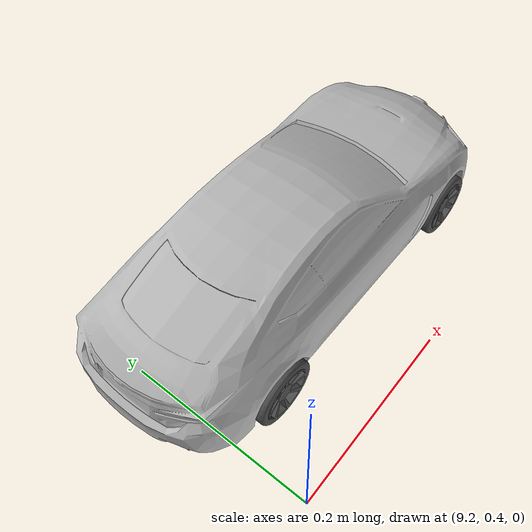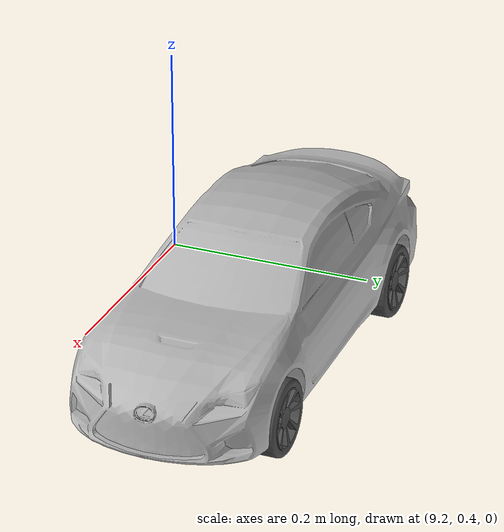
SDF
<sdf version="1.7">
 <world name="bfmc_official">
  <model name="automobile_obstacle_0">
   <static>1</static>
   <frame name="chassis::__model__" attached_to="chassis::link">
    <pose relative_to="__model__">0 0 0 0 -0 0</pose>
   </frame>
   <link name="chassis::link">
    <inertial>
     <mass>0.26244</mass>
     <inertia>
      <ixx>0.00283444</ixx>
      <ixy>0</ixy>
      <ixz>0</ixz>
      <iyy>0.00039867</iyy>
      <iyz>0</iyz>
      <izz>0.00323293</izz>
     </inertia>
    </inertial>
    <pose relative_to="chassis::__model__">0 0 0 0 -0 0</pose>
    <visual name="visual">
     <pose>0 0 -0.0065 0 -0 0</pose>
     <geometry><mesh><uri>model://chassis/meshes/chassisV5.dae</uri><scale>1 1 1</scale></mesh></geometry>
     <material>
      <lighting>1</lighting>
      <shader type="vertex"><normal_map>__default__</normal_map></shader>
      <ambient>0.6 0.6 0.6 1</ambient>
      <diffuse>0.85 0.85 0.85 1</diffuse>
      <specular>0.6 0.6 0.6 1</specular>
      <emissive>0 0 0 1</emissive>
     </material>
    </visual>
    <collision name="collision">
     <geometry><box><size>0.135 0.36 0.002</size></box></geometry>
     <surface>
      <friction>
       <ode><mu>1</mu><mu2>1</mu2><fdir1>0 0 0</fdir1><slip1>0</slip1><slip2>0</slip2></ode>
       <torsional>
        <coefficient>1</coefficient>
        <patch_radius>0</patch_radius>
        <surface_radius>0</surface_radius>
        <use_patch_radius>1</use_patch_radius>
        <ode><slip>0</slip></ode>
       </torsional>
      </friction>
      <bounce><restitution_coefficient>0</restitution_coefficient><threshold>1e+06</threshold></bounce>
      <contact>
       <collide_without_contact>0</collide_without_contact>
       <collide_without_contact_bitmask>1</collide_without_contact_bitmask>
       <collide_bitmask>1</collide_bitmask>
       <ode>
        <soft_cfm>0</soft_cfm>
        <soft_erp>0.2</soft_erp>
        <kp>1e+13</kp>
        <kd>1</kd>
        <max_vel>0.01</max_vel>
        <min_depth>0</min_depth>
       </ode>
       <bullet>
        <split_impulse>1</split_impulse>
        <split_impulse_penetration_threshold>-0.01</split_impulse_penetration_threshold>
        <soft_cfm>0</soft_cfm>
        <soft_erp>0.2</soft_erp>
        <kp>1e+13</kp>
        <kd>1</kd>
       </bullet>
      </contact>
     </surface>
    </collision>
   </link>
   <frame name="wheel_rear_left::__model__" attached_to="wheel_rear_left::link_rim">
    <pose relative_to="__model__">-0.152 0.081 0 0 -0 0</pose>
   </frame>
   <link name="wheel_rear_left::link_rim">
    <inertial>
     <mass>0.038</mass>
     <inertia>
      <ixx>1.283e-05</ixx>
      <ixy>0</ixy>
      <ixz>0</ixz>
      <iyy>1.283e-05</iyy>
      <iyz>0</iyz>
      <izz>2.069e-05</izz>
     </inertia>
    </inertial>
    <pose relative_to="wheel_rear_left::__model__">0 0 0 1.5708 -0 0</pose>
    <visual name="visual">
     <pose>0 0 0 -1.5708 0 0</pose>
     <geometry><mesh><uri>model://wheel_left/meshes/rim.dae</uri><scale>1 1 1</scale></mesh></geometry>
     <material>
      <lighting>1</lighting>
      <shader type="vertex"><normal_map>__default__</normal_map></shader>
      <ambient>0.2 0.2 0.2 1</ambient>
      <diffuse>0.3 0.3 0.3 1</diffuse>
      <specular>0.5 0.5 0.5 1</specular>
      <emissive>0 0 0 0</emissive>
     </material>
    </visual>
    <collision name="collision">
     <geometry><cylinder><radius>0.033</radius><length>0.028</length></cylinder></geometry>
     <surface>
      <friction>
       <ode><mu>0.7</mu><mu2>0.7</mu2><fdir1>0 0 0</fdir1><slip1>0</slip1><slip2>0</slip2></ode>
       <torsional>
        <coefficient>1</coefficient>
        <patch_radius>0</patch_radius>
        <surface_radius>0</surface_radius>
        <use_patch_radius>1</use_patch_radius>
        <ode><slip>0</slip></ode>
       </torsional>
      </friction>
      <bounce><restitution_coefficient>0</restitution_coefficient><threshold>1e+06</threshold></bounce>
      <contact>
       <collide_without_contact>0</collide_without_contact>
       <collide_without_contact_bitmask>1</collide_without_contact_bitmask>
       <collide_bitmask>1</collide_bitmask>
       <ode>
        <soft_cfm>0</soft_cfm>
        <soft_erp>0.2</soft_erp>
        <kp>1e+07</kp>
        <kd>1</kd>
        <max_vel>0.01</max_vel>
        <min_depth>0</min_depth>
       </ode>
       <bullet>
        <split_impulse>1</split_impulse>
        <split_impulse_penetration_threshold>-0.01</split_impulse_penetration_threshold>
        <soft_cfm>0</soft_cfm>
        <soft_erp>0.2</soft_erp>
        <kp>1e+07</kp>
        <kd>1</kd>
       </bullet>
      </contact>
     </surface>
    </collision>
   </link>
   <frame name="wheel_rear_right::__model__" attached_to="wheel_rear_right::link_rim">
    <pose relative_to="__model__">-0.152 -0.081 0 0 -0 0</pose>
   </frame>
   <link name="wheel_rear_right::link_rim">
    <inertial>
     <mass>0.038</mass>
     <inertia>
      <ixx>1.283e-05</ixx>
      <ixy>0</ixy>
      <ixz>0</ixz>
      <iyy>1.283e-05</iyy>
      <iyz>0</iyz>
      <izz>2.069e-05</izz>
     </inertia>
    </inertial>
    <pose relative_to="wheel_rear_right::__model__">0 0 0 1.5708 -0 0</pose>
    <visual name="visual">
     <pose>0 0 0 -1.5708 0 0</pose>
     <geometry><mesh><uri>model://wheel_right/meshes/rim.dae</uri><scale>1 1 1</scale></mesh></geometry>
     <material>
      <lighting>1</lighting>
      <shader type="vertex"><normal_map>__default__</normal_map></shader>
      <ambient>0.2 0.2 0.2 1</ambient>
      <diffuse>0.3 0.3 0.3 1</diffuse>
      <specular>0.5 0.5 0.5 1</specular>
      <emissive>0 0 0 0</emissive>
     </material>
    </visual>
    <collision name="collision">
     <geometry><cylinder><radius>0.033</radius><length>0.028</length></cylinder></geometry>
     <surface>
      <friction>
       <ode><mu>0.7</mu><mu2>0.7</mu2><fdir1>0 0 0</fdir1><slip1>0</slip1><slip2>0</slip2></ode>
       <torsional>
        <coefficient>1</coefficient>
        <patch_radius>0</patch_radius>
        <surface_radius>0</surface_radius>
        <use_patch_radius>1</use_patch_radius>
        <ode><slip>0</slip></ode>
       </torsional>
      </friction>
      <bounce><restitution_coefficient>0</restitution_coefficient><threshold>1e+06</threshold></bounce>
      <contact>
       <collide_without_contact>0</collide_without_contact>
       <collide_without_contact_bitmask>1</collide_without_contact_bitmask>
       <collide_bitmask>1</collide_bitmask>
       <ode>
        <soft_cfm>0</soft_cfm>
        <soft_erp>0.2</soft_erp>
        <kp>1e+07</kp>
        <kd>1</kd>
        <max_vel>0.01</max_vel>
        <min_depth>0</min_depth>
       </ode>
       <bullet>
        <split_impulse>1</split_impulse>
        <split_impulse_penetration_threshold>-0.01</split_impulse_penetration_threshold>
        <soft_cfm>0</soft_cfm>
        <soft_erp>0.2</soft_erp>
        <kp>1e+07</kp>
        <kd>1</kd>
       </bullet>
      </contact>
     </surface>
    </collision>
   </link>
   <frame name="steer_left::__model__" attached_to="steer_left::link_steer">
    <pose relative_to="__model__">0.112 0.0725 0 0 -0 0</pose>
   </frame>
   <link name="steer_left::link_steer">
    <inertial>
     <mass>0.001</mass>
     <inertia>
      <ixx>0.00014583</ixx>
      <ixy>0</ixy>
      <ixz>0</ixz>
      <iyy>0.00014583</iyy>
      <iyz>0</iyz>
      <izz>0.000125</izz>
     </inertia>
    </inertial>
    <pose relative_to="steer_left::__model__">0 0 0 1.5708 -0 0</pose>
    <visual name="visual">
     <geometry><cylinder><radius>0.001</radius><length>0.01</length></cylinder></geometry>
     <material>
      <lighting>1</lighting>
      <script><uri>file://media/materials/scripts/gazebo.material</uri><name>Gazebo/Grey</name></script>
      <shader type="vertex"><normal_map>__default__</normal_map></shader>
      <ambient>0.3 0.3 0.3 1</ambient>
      <diffuse>0.7 0.7 0.7 1</diffuse>
      <specular>0.01 0.01 0.01 1</specular>
      <emissive>0 0 0 1</emissive>
     </material>
    </visual>
    <collision name="collision">
     <geometry><cylinder><radius>0.001</radius><length>0.01</length></cylinder></geometry>
     <surface>
      <friction>
       <ode><mu>1</mu><mu2>1</mu2><fdir1>0 0 0</fdir1><slip1>0</slip1><slip2>0</slip2></ode>
       <torsional>
        <coefficient>1</coefficient>
        <patch_radius>0</patch_radius>
        <surface_radius>0</surface_radius>
        <use_patch_radius>1</use_patch_radius>
        <ode><slip>0</slip></ode>
       </torsional>
      </friction>
      <bounce><restitution_coefficient>0</restitution_coefficient><threshold>1e+06</threshold></bounce>
      <contact>
       <collide_without_contact>0</collide_without_contact>
       <collide_without_contact_bitmask>1</collide_without_contact_bitmask>
       <collide_bitmask>1</collide_bitmask>
       <ode>
        <soft_cfm>0</soft_cfm>
        <soft_erp>0.2</soft_erp>
        <kp>1e+13</kp>
        <kd>1</kd>
        <max_vel>0.01</max_vel>
        <min_depth>0</min_depth>
       </ode>
       <bullet>
        <split_impulse>1</split_impulse>
        <split_impulse_penetration_threshold>-0.01</split_impulse_penetration_threshold>
        <soft_cfm>0</soft_cfm>
        <soft_erp>0.2</soft_erp>
        <kp>1e+13</kp>
        <kd>1</kd>
       </bullet>
      </contact>
     </surface>
    </collision>
   </link>
   <frame name="steer_right::__model__" attached_to="steer_right::link_steer">
    <pose relative_to="__model__">0.112 -0.0725 0 0 -0 0</pose>
   </frame>
   <link name="steer_right::link_steer">
    <inertial>
     <mass>0.001</mass>
     <inertia>
      <ixx>0.00014583</ixx>
      <ixy>0</ixy>
      <ixz>0</ixz>
      <iyy>0.00014583</iyy>
      <iyz>0</iyz>
      <izz>0.000125</izz>
     </inertia>
    </inertial>
    <pose relative_to="steer_right::__model__">0 0 0 1.5708 -0 0</pose>
    <visual name="visual">
     <geometry><cylinder><radius>0.001</radius><length>0.01</length></cylinder></geometry>
     <material>
      <lighting>1</lighting>
      <script><uri>file://media/materials/scripts/gazebo.material</uri><name>Gazebo/Grey</name></script>
      <shader type="vertex"><normal_map>__default__</normal_map></shader>
      <ambient>0.3 0.3 0.3 1</ambient>
      <diffuse>0.7 0.7 0.7 1</diffuse>
      <specular>0.01 0.01 0.01 1</specular>
      <emissive>0 0 0 1</emissive>
     </material>
    </visual>
    <collision name="collision">
     <geometry><cylinder><radius>0.001</radius><length>0.01</length></cylinder></geometry>
     <surface>
      <friction>
       <ode><mu>1</mu><mu2>1</mu2><fdir1>0 0 0</fdir1><slip1>0</slip1><slip2>0</slip2></ode>
       <torsional>
        <coefficient>1</coefficient>
        <patch_radius>0</patch_radius>
        <surface_radius>0</surface_radius>
        <use_patch_radius>1</use_patch_radius>
        <ode><slip>0</slip></ode>
       </torsional>
      </friction>
      <bounce><restitution_coefficient>0</restitution_coefficient><threshold>1e+06</threshold></bounce>
      <contact>
       <collide_without_contact>0</collide_without_contact>
       <collide_without_contact_bitmask>1</collide_without_contact_bitmask>
       <collide_bitmask>1</collide_bitmask>
       <ode>
        <soft_cfm>0</soft_cfm>
        <soft_erp>0.2</soft_erp>
        <kp>1e+13</kp>
        <kd>1</kd>
        <max_vel>0.01</max_vel>
        <min_depth>0</min_depth>
       </ode>
       <bullet>
        <split_impulse>1</split_impulse>
        <split_impulse_penetration_threshold>-0.01</split_impulse_penetration_threshold>
        <soft_cfm>0</soft_cfm>
        <soft_erp>0.2</soft_erp>
        <kp>1e+13</kp>
        <kd>1</kd>
       </bullet>
      </contact>
     </surface>
    </collision>
   </link>
   <frame name="wheel_front_left::__model__" attached_to="wheel_front_left::link_rim">
    <pose relative_to="__model__">0.118 0.081 0 0 -0 0</pose>
   </frame>
   <link name="wheel_front_left::link_rim">
    <inertial>
     <mass>0.038</mass>
     <inertia>
      <ixx>1.283e-05</ixx>
      <ixy>0</ixy>
      <ixz>0</ixz>
      <iyy>1.283e-05</iyy>
      <iyz>0</iyz>
      <izz>2.069e-05</izz>
     </inertia>
    </inertial>
    <pose relative_to="wheel_front_left::__model__">0 0 0 1.5708 -0 0</pose>
    <visual name="visual">
     <pose>0 0 0 -1.5708 0 0</pose>
     <geometry><mesh><uri>model://wheel_left/meshes/rim.dae</uri><scale>1 1 1</scale></mesh></geometry>
     <material>
      <lighting>1</lighting>
      <shader type="vertex"><normal_map>__default__</normal_map></shader>
      <ambient>0.2 0.2 0.2 1</ambient>
      <diffuse>0.3 0.3 0.3 1</diffuse>
      <specular>0.5 0.5 0.5 1</specular>
      <emissive>0 0 0 0</emissive>
     </material>
    </visual>
    <collision name="collision">
     <geometry><cylinder><radius>0.033</radius><length>0.028</length></cylinder></geometry>
     <surface>
      <friction>
       <ode><mu>0.7</mu><mu2>0.7</mu2><fdir1>0 0 0</fdir1><slip1>0</slip1><slip2>0</slip2></ode>
       <torsional>
        <coefficient>1</coefficient>
        <patch_radius>0</patch_radius>
        <surface_radius>0</surface_radius>
        <use_patch_radius>1</use_patch_radius>
        <ode><slip>0</slip></ode>
       </torsional>
      </friction>
      <bounce><restitution_coefficient>0</restitution_coefficient><threshold>1e+06</threshold></bounce>
      <contact>
       <collide_without_contact>0</collide_without_contact>
       <collide_without_contact_bitmask>1</collide_without_contact_bitmask>
       <collide_bitmask>1</collide_bitmask>
       <ode>
        <soft_cfm>0</soft_cfm>
        <soft_erp>0.2</soft_erp>
        <kp>1e+07</kp>
        <kd>1</kd>
        <max_vel>0.01</max_vel>
        <min_depth>0</min_depth>
       </ode>
       <bullet>
        <split_impulse>1</split_impulse>
        <split_impulse_penetration_threshold>-0.01</split_impulse_penetration_threshold>
        <soft_cfm>0</soft_cfm>
        <soft_erp>0.2</soft_erp>
        <kp>1e+07</kp>
        <kd>1</kd>
       </bullet>
      </contact>
     </surface>
    </collision>
   </link>
   <frame name="wheel_front_right::__model__" attached_to="wheel_front_right::link_rim">
    <pose relative_to="__model__">0.118 -0.081 0 0 -0 0</pose>
   </frame>
   <link name="wheel_front_right::link_rim">
    <inertial>
     <mass>0.038</mass>
     <inertia>
      <ixx>1.283e-05</ixx>
      <ixy>0</ixy>
      <ixz>0</ixz>
      <iyy>1.283e-05</iyy>
      <iyz>0</iyz>
      <izz>2.069e-05</izz>
     </inertia>
    </inertial>
    <pose relative_to="wheel_front_right::__model__">0 0 0 1.5708 -0 0</pose>
    <visual name="visual">
     <pose>0 0 0 -1.5708 0 0</pose>
     <geometry><mesh><uri>model://wheel_right/meshes/rim.dae</uri><scale>1 1 1</scale></mesh></geometry>
     <material>
      <lighting>1</lighting>
      <shader type="vertex"><normal_map>__default__</normal_map></shader>
      <ambient>0.2 0.2 0.2 1</ambient>
      <diffuse>0.3 0.3 0.3 1</diffuse>
      <specular>0.5 0.5 0.5 1</specular>
      <emissive>0 0 0 0</emissive>
     </material>
    </visual>
    <collision name="collision">
     <geometry><cylinder><radius>0.033</radius><length>0.028</length></cylinder></geometry>
     <surface>
      <friction>
       <ode><mu>0.7</mu><mu2>0.7</mu2><fdir1>0 0 0</fdir1><slip1>0</slip1><slip2>0</slip2></ode>
       <torsional>
        <coefficient>1</coefficient>
        <patch_radius>0</patch_radius>
        <surface_radius>0</surface_radius>
        <use_patch_radius>1</use_patch_radius>
        <ode><slip>0</slip></ode>
       </torsional>
      </friction>
      <bounce><restitution_coefficient>0</restitution_coefficient><threshold>1e+06</threshold></bounce>
      <contact>
       <collide_without_contact>0</collide_without_contact>
       <collide_without_contact_bitmask>1</collide_without_contact_bitmask>
       <collide_bitmask>1</collide_bitmask>
       <ode>
        <soft_cfm>0</soft_cfm>
        <soft_erp>0.2</soft_erp>
        <kp>1e+07</kp>
        <kd>1</kd>
        <max_vel>0.01</max_vel>
        <min_depth>0</min_depth>
       </ode>
       <bullet>
        <split_impulse>1</split_impulse>
        <split_impulse_penetration_threshold>-0.01</split_impulse_penetration_threshold>
        <soft_cfm>0</soft_cfm>
        <soft_erp>0.2</soft_erp>
        <kp>1e+07</kp>
        <kd>1</kd>
       </bullet>
      </contact>
     </surface>
    </collision>
   </link>
   <frame name="car_body::__model__" attached_to="car_body::link">
    <pose relative_to="__model__">-0.024 0 -0.028 0 -0 0</pose>
   </frame>
   <link name="car_body::link">
    <inertial>
     <mass>1</mass>
     <inertia>
      <ixx>0.166667</ixx>
      <ixy>0</ixy>
      <ixz>0</ixz>
      <iyy>0.166667</iyy>
      <iyz>0</iyz>
      <izz>0.166667</izz>
     </inertia>
    </inertial>
    <pose relative_to="car_body::__model__">0 -0 0 0 -0 0</pose>
    <visual name="visual">
     <geometry><mesh><uri>model://car_body/meshes/CarBody.dae</uri><scale>1 1 1</scale></mesh></geometry>
     <material>
      <script>
       <uri>model://car_body/materials/scripts</uri>
       <uri>model://car_body/materials/textures</uri>
       <name>CarBody/Image</name>
      </script>
     </material>
    </visual>
   </link>
   <static>0</static>
   <joint name="joint_leftrear_rim" type="fixed">
    <parent>chassis::link</parent>
    <child>wheel_rear_left::link_rim</child>
   </joint>
   <joint name="joint_rightrear_rim" type="fixed">
    <parent>chassis::link</parent>
    <child>wheel_rear_right::link_rim</child>
   </joint>
   <joint name="joint_rightfront_rim" type="fixed">
    <parent>chassis::link</parent>
    <child>wheel_front_right::link_rim</child>
   </joint>
   <joint name="joint_leftfront_rim" type="fixed">
    <parent>chassis::link</parent>
    <child>wheel_front_left::link_rim</child>
   </joint>
   <joint name="joint_body" type="fixed"><parent>chassis::link</parent><child>car_body::link</child></joint>
   <pose>9.40789 0.558898 0.035446 0 -0 0</pose>
  </model>
 </world>
</sdf>
